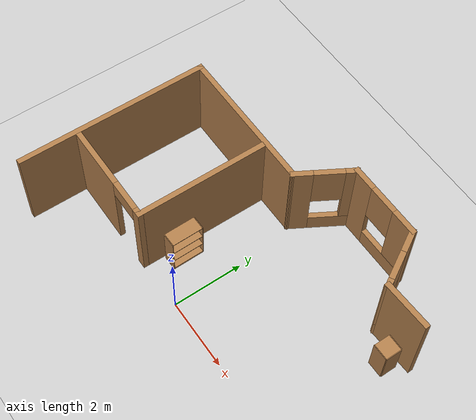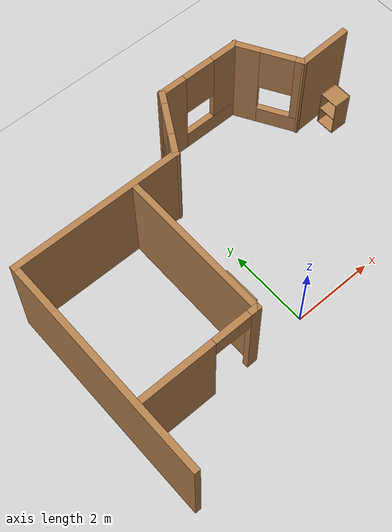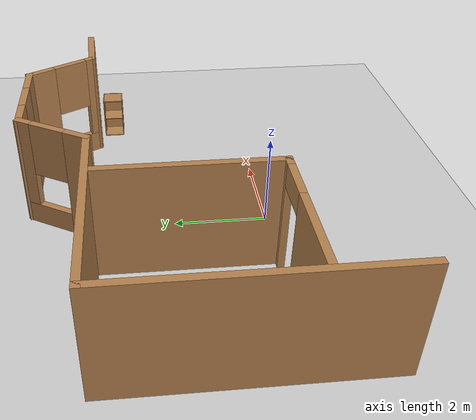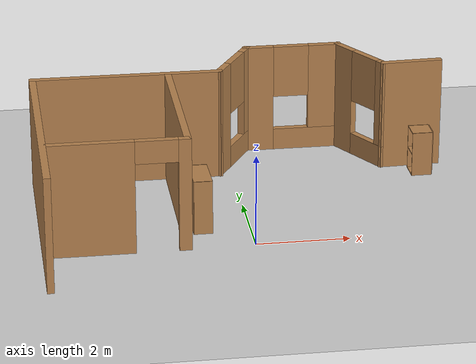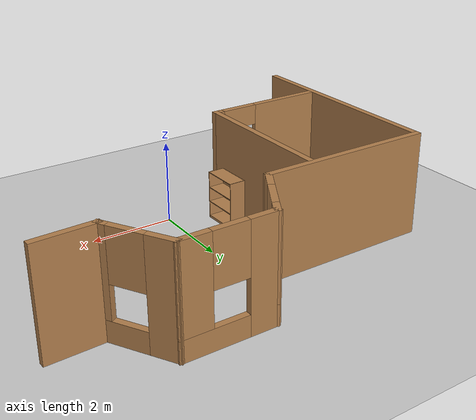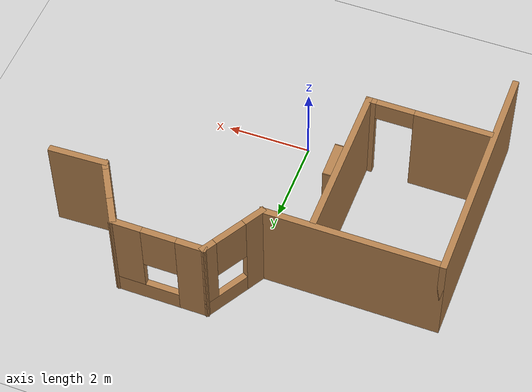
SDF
<sdf version="1.6">
 <world name="default">
  <model name="ground_plane">
   <static>1</static>
   <link name="link">
    <collision name="collision">
     <geometry><plane><normal>0 0 1</normal><size>100 100</size></plane></geometry>
     <surface><friction><ode><mu>100</mu><mu2>50</mu2></ode></friction></surface>
    </collision>
    <visual name="visual">
     <cast_shadows>0</cast_shadows>
     <geometry><plane><normal>0 0 1</normal><size>100 100</size></plane></geometry>
     <material>
      <script><uri>file://media/materials/scripts/gazebo.material</uri><name>Gazebo/Grey</name></script>
     </material>
    </visual>
   </link>
  </model>
  <model name="bookshelf">
   <static>1</static>
   <link name="link">
    <inertial><mass>1</mass></inertial>
    <collision name="back">
     <pose>0 0.005 0.6 0 -0 0</pose>
     <geometry><box><size>0.9 0.01 1.2</size></box></geometry>
    </collision>
    <visual name="visual1">
     <pose>0 0.005 0.6 0 -0 0</pose>
     <geometry><box><size>0.9 0.01 1.2</size></box></geometry>
     <material>
      <script><uri>file://media/materials/scripts/gazebo.material</uri><name>Gazebo/Wood</name></script>
     </material>
    </visual>
    <collision name="left_side">
     <pose>0.45 -0.195 0.6 0 -0 0</pose>
     <geometry><box><size>0.02 0.4 1.2</size></box></geometry>
    </collision>
    <visual name="visual2">
     <pose>0.45 -0.195 0.6 0 -0 0</pose>
     <geometry><box><size>0.02 0.4 1.2</size></box></geometry>
     <material>
      <script><uri>file://media/materials/scripts/gazebo.material</uri><name>Gazebo/Wood</name></script>
     </material>
    </visual>
    <collision name="right_side">
     <pose>-0.45 -0.195 0.6 0 -0 0</pose>
     <geometry><box><size>0.02 0.4 1.2</size></box></geometry>
    </collision>
    <visual name="visual3">
     <pose>-0.45 -0.195 0.6 0 -0 0</pose>
     <geometry><box><size>0.02 0.4 1.2</size></box></geometry>
     <material>
      <script><uri>file://media/materials/scripts/gazebo.material</uri><name>Gazebo/Wood</name></script>
     </material>
    </visual>
    <collision name="bottom">
     <pose>0 -0.195 0.03 0 -0 0</pose>
     <geometry><box><size>0.88 0.4 0.06</size></box></geometry>
    </collision>
    <visual name="visual4">
     <pose>0 -0.195 0.03 0 -0 0</pose>
     <geometry><box><size>0.88 0.4 0.06</size></box></geometry>
     <material>
      <script><uri>file://media/materials/scripts/gazebo.material</uri><name>Gazebo/Wood</name></script>
     </material>
    </visual>
    <collision name="top">
     <pose>0 -0.195 1.19 0 -0 0</pose>
     <geometry><box><size>0.88 0.4 0.02</size></box></geometry>
    </collision>
    <visual name="visual5">
     <pose>0 -0.195 1.19 0 -0 0</pose>
     <geometry><box><size>0.88 0.4 0.02</size></box></geometry>
     <material>
      <script><uri>file://media/materials/scripts/gazebo.material</uri><name>Gazebo/Wood</name></script>
     </material>
    </visual>
    <collision name="low_shelf">
     <pose>0 -0.195 0.43 0 -0 0</pose>
     <geometry><box><size>0.88 0.4 0.02</size></box></geometry>
    </collision>
    <visual name="visual6">
     <pose>0 -0.195 0.43 0 -0 0</pose>
     <geometry><box><size>0.88 0.4 0.02</size></box></geometry>
     <material>
      <script><uri>file://media/materials/scripts/gazebo.material</uri><name>Gazebo/Wood</name></script>
     </material>
    </visual>
    <collision name="high_shelf">
     <pose>0 -0.195 0.8 0 -0 0</pose>
     <geometry><box><size>0.88 0.4 0.02</size></box></geometry>
    </collision>
    <visual name="visual7">
     <pose>0 -0.195 0.8 0 -0 0</pose>
     <geometry><box><size>0.88 0.4 0.02</size></box></geometry>
     <material>
      <script><uri>file://media/materials/scripts/gazebo.material</uri><name>Gazebo/Wood</name></script>
     </material>
    </visual>
   </link>
   <pose>-1.24281 0.975028 0.065504 0 -0 1.58566</pose>
  </model>
  <model name="cabinet_0">
   <static>1</static>
   <link name="cabinet_bottom_plate">
    <inertial>
     <pose>0 0 -1 0 -0 0</pose>
     <inertia><ixx>2.05</ixx><ixy>0</ixy><ixz>0</ixz><iyy>2.05</iyy><iyz>0</iyz><izz>2.05</izz></inertia>
     <mass>25</mass>
    </inertial>
    <collision name="cabinet_bottom_plate_geom">
     <pose>0 0 0.01 0 -0 0</pose>
     <geometry><box><size>0.45 0.45 0.02</size></box></geometry>
    </collision>
    <visual name="cabinet_bottom_plate_geom_visual">
     <pose>0 0 0.01 0 -0 0</pose>
     <geometry><box><size>0.45 0.45 0.02</size></box></geometry>
     <material>
      <script><uri>file://media/materials/scripts/gazebo.material</uri><name>Gazebo/Wood</name></script>
     </material>
    </visual>
    <collision name="cabinet_bottom_plate_geom_cabinet_back_plate">
     <pose>0.235 0 0.51 0 -0 0</pose>
     <geometry><box><size>0.02 0.45 1.02</size></box></geometry>
    </collision>
    <visual name="cabinet_bottom_plate_geom_cabinet_back_plate_visual">
     <pose>0.235 0 0.51 0 -0 0</pose>
     <geometry><box><size>0.02 0.45 1.02</size></box></geometry>
     <material>
      <script><uri>file://media/materials/scripts/gazebo.material</uri><name>Gazebo/Wood</name></script>
     </material>
    </visual>
    <collision name="cabinet_bottom_plate_geom_cabinet_left_plate">
     <pose>0 0.235 0.51 0 -0 0</pose>
     <geometry><box><size>0.45 0.02 1.02</size></box></geometry>
    </collision>
    <visual name="cabinet_bottom_plate_geom_cabinet_left_plate_visual">
     <pose>0 0.235 0.51 0 -0 0</pose>
     <geometry><box><size>0.45 0.02 1.02</size></box></geometry>
     <material>
      <script><uri>file://media/materials/scripts/gazebo.material</uri><name>Gazebo/Wood</name></script>
     </material>
    </visual>
    <collision name="cabinet_bottom_plate_geom_cabinet_middle_plate">
     <pose>0 0 0.51 0 -0 0</pose>
     <geometry><box><size>0.45 0.45 0.02</size></box></geometry>
    </collision>
    <visual name="cabinet_bottom_plate_geom_cabinet_middle_plate_visual">
     <pose>0 0 0.51 0 -0 0</pose>
     <geometry><box><size>0.45 0.45 0.02</size></box></geometry>
     <material>
      <script><uri>file://media/materials/scripts/gazebo.material</uri><name>Gazebo/Wood</name></script>
     </material>
    </visual>
    <collision name="cabinet_bottom_plate_geom_cabinet_right_plate">
     <pose>0 -0.235 0.51 0 -0 0</pose>
     <geometry><box><size>0.45 0.02 1.02</size></box></geometry>
    </collision>
    <visual name="cabinet_bottom_plate_geom_cabinet_right_plate_visual">
     <pose>0 -0.235 0.51 0 -0 0</pose>
     <geometry><box><size>0.45 0.02 1.02</size></box></geometry>
     <material>
      <script><uri>file://media/materials/scripts/gazebo.material</uri><name>Gazebo/Wood</name></script>
     </material>
    </visual>
    <collision name="cabinet_bottom_plate_geom_cabinet_top_plate">
     <pose>0 0 1.01 0 -0 0</pose>
     <geometry><box><size>0.45 0.45 0.02</size></box></geometry>
    </collision>
    <visual name="cabinet_bottom_plate_geom_cabinet_top_plate_visual">
     <pose>0 0 1.01 0 -0 0</pose>
     <geometry><box><size>0.45 0.45 0.02</size></box></geometry>
     <material>
      <script><uri>file://media/materials/scripts/gazebo.material</uri><name>Gazebo/Wood</name></script>
     </material>
    </visual>
   </link>
   <pose>4.2117 3.31957 0 0 -0 0</pose>
  </model>
  <model name="badrs">
   <link name="Wall_30">
    <pose>-4.52647 1.01845 0 0 -0 1.5708</pose>
    <inertial>
     <mass>1</mass>
     <inertia><ixx>1</ixx><ixy>0</ixy><ixz>0</ixz><iyy>1</iyy><iyz>0</iyz><izz>1</izz></inertia>
    </inertial>
    <visual name="Wall_30_Visual">
     <pose>0 0 1.25 0 -0 0</pose>
     <geometry><box><size>5.5 0.15 2.5</size></box></geometry>
     <material>
      <script><uri>file://media/materials/scripts/gazebo.material</uri><name>Gazebo/Wood</name></script>
      <ambient>1 1 1 1</ambient>
      <shader type="pixel"><normal_map>__default__</normal_map></shader>
      <diffuse>1 1 1 1</diffuse>
      <specular>0 0 0 1</specular>
      <emissive>0 0 0 1</emissive>
     </material>
     <meta><layer>0</layer></meta>
    </visual>
    <collision name="Wall_30_Collision">
     <pose>0 0 1.25 0 -0 0</pose>
     <geometry><box><size>5.5 0.15 2.5</size></box></geometry>
     <surface>
      <friction>
       <ode><mu>1</mu><mu2>1</mu2><fdir1>0 0 0</fdir1><slip1>0</slip1><slip2>0</slip2></ode>
       <torsional>
        <coefficient>1</coefficient>
        <patch_radius>0</patch_radius>
        <surface_radius>0</surface_radius>
        <use_patch_radius>1</use_patch_radius>
        <ode><slip>0</slip></ode>
       </torsional>
      </friction>
      <bounce><restitution_coefficient>0</restitution_coefficient><threshold>1e+06</threshold></bounce>
      <contact>
       <collide_without_contact>0</collide_without_contact>
       <collide_without_contact_bitmask>1</collide_without_contact_bitmask>
       <collide_bitmask>1</collide_bitmask>
       <ode>
        <soft_cfm>0</soft_cfm>
        <soft_erp>0.2</soft_erp>
        <kp>1e+13</kp>
        <kd>1</kd>
        <max_vel>0.01</max_vel>
        <min_depth>0</min_depth>
       </ode>
       <bullet>
        <split_impulse>1</split_impulse>
        <split_impulse_penetration_threshold>-0.01</split_impulse_penetration_threshold>
        <soft_cfm>0</soft_cfm>
        <soft_erp>0.2</soft_erp>
        <kp>1e+13</kp>
        <kd>1</kd>
       </bullet>
      </contact>
     </surface>
    </collision>
   </link>
   <link name="Wall_31">
    <pose>-2.47647 3.69345 0 0 -0 0</pose>
    <inertial>
     <mass>1</mass>
     <inertia><ixx>1</ixx><ixy>0</ixy><ixz>0</ixz><iyy>1</iyy><iyz>0</iyz><izz>1</izz></inertia>
    </inertial>
    <visual name="Wall_31_Visual">
     <pose>0 0 1.25 0 -0 0</pose>
     <geometry><box><size>4.25 0.15 2.5</size></box></geometry>
     <material>
      <script><uri>file://media/materials/scripts/gazebo.material</uri><name>Gazebo/Wood</name></script>
      <ambient>1 1 1 1</ambient>
      <shader type="pixel"><normal_map>__default__</normal_map></shader>
      <diffuse>1 1 1 1</diffuse>
      <specular>0 0 0 1</specular>
      <emissive>0 0 0 1</emissive>
     </material>
     <meta><layer>0</layer></meta>
    </visual>
    <collision name="Wall_31_Collision">
     <pose>0 0 1.25 0 -0 0</pose>
     <geometry><box><size>4.25 0.15 2.5</size></box></geometry>
     <surface>
      <friction>
       <ode><mu>1</mu><mu2>1</mu2><fdir1>0 0 0</fdir1><slip1>0</slip1><slip2>0</slip2></ode>
       <torsional>
        <coefficient>1</coefficient>
        <patch_radius>0</patch_radius>
        <surface_radius>0</surface_radius>
        <use_patch_radius>1</use_patch_radius>
        <ode><slip>0</slip></ode>
       </torsional>
      </friction>
      <bounce><restitution_coefficient>0</restitution_coefficient><threshold>1e+06</threshold></bounce>
      <contact>
       <collide_without_contact>0</collide_without_contact>
       <collide_without_contact_bitmask>1</collide_without_contact_bitmask>
       <collide_bitmask>1</collide_bitmask>
       <ode>
        <soft_cfm>0</soft_cfm>
        <soft_erp>0.2</soft_erp>
        <kp>1e+13</kp>
        <kd>1</kd>
        <max_vel>0.01</max_vel>
        <min_depth>0</min_depth>
       </ode>
       <bullet>
        <split_impulse>1</split_impulse>
        <split_impulse_penetration_threshold>-0.01</split_impulse_penetration_threshold>
        <soft_cfm>0</soft_cfm>
        <soft_erp>0.2</soft_erp>
        <kp>1e+13</kp>
        <kd>1</kd>
       </bullet>
      </contact>
     </surface>
    </collision>
   </link>
   <link name="Wall_32">
    <pose>-0.026469 4.38627 0 0 -0 1.0472</pose>
    <inertial>
     <mass>1</mass>
     <inertia><ixx>1</ixx><ixy>0</ixy><ixz>0</ixz><iyy>1</iyy><iyz>0</iyz><izz>1</izz></inertia>
    </inertial>
    <visual name="Wall_32_Visual_0">
     <pose>-0.584637 0 1.25 0 -0 0</pose>
     <geometry><box><size>0.580725 0.15 2.5</size></box></geometry>
     <material>
      <script><uri>file://media/materials/scripts/gazebo.material</uri><name>Gazebo/Wood</name></script>
      <ambient>1 1 1 1</ambient>
      <shader type="pixel"><normal_map>__default__</normal_map></shader>
      <diffuse>1 1 1 1</diffuse>
      <specular>0 0 0 1</specular>
      <emissive>0 0 0 1</emissive>
     </material>
     <meta><layer>0</layer></meta>
    </visual>
    <visual name="Wall_32_Visual_1">
     <pose>0.290363 0 0.25 0 -0 0</pose>
     <geometry><box><size>1.16928 0.15 0.5</size></box></geometry>
     <material>
      <script><uri>file://media/materials/scripts/gazebo.material</uri><name>Gazebo/Wood</name></script>
      <ambient>1 1 1 1</ambient>
      <shader type="pixel"><normal_map>__default__</normal_map></shader>
      <diffuse>1 1 1 1</diffuse>
      <specular>0 0 0 1</specular>
      <emissive>0 0 0 1</emissive>
     </material>
     <meta><layer>0</layer></meta>
    </visual>
    <visual name="Wall_32_Visual_2">
     <pose>0.690363 0 1.5 0 -0 0</pose>
     <geometry><box><size>0.369275 0.15 2</size></box></geometry>
     <material>
      <script><uri>file://media/materials/scripts/gazebo.material</uri><name>Gazebo/Wood</name></script>
      <ambient>1 1 1 1</ambient>
      <shader type="pixel"><normal_map>__default__</normal_map></shader>
      <diffuse>1 1 1 1</diffuse>
      <specular>0 0 0 1</specular>
      <emissive>0 0 0 1</emissive>
     </material>
     <meta><layer>0</layer></meta>
    </visual>
    <visual name="Wall_32_Visual_3">
     <pose>0.105725 0 1.9 0 -0 0</pose>
     <geometry><box><size>0.8 0.15 1.2</size></box></geometry>
     <material>
      <script><uri>file://media/materials/scripts/gazebo.material</uri><name>Gazebo/Wood</name></script>
      <ambient>1 1 1 1</ambient>
      <shader type="pixel"><normal_map>__default__</normal_map></shader>
      <diffuse>1 1 1 1</diffuse>
      <specular>0 0 0 1</specular>
      <emissive>0 0 0 1</emissive>
     </material>
     <meta><layer>0</layer></meta>
    </visual>
    <collision name="Wall_32_Collision_0">
     <pose>-0.584637 0 1.25 0 -0 0</pose>
     <geometry><box><size>0.580725 0.15 2.5</size></box></geometry>
     <surface>
      <friction>
       <ode><mu>1</mu><mu2>1</mu2><fdir1>0 0 0</fdir1><slip1>0</slip1><slip2>0</slip2></ode>
       <torsional>
        <coefficient>1</coefficient>
        <patch_radius>0</patch_radius>
        <surface_radius>0</surface_radius>
        <use_patch_radius>1</use_patch_radius>
        <ode><slip>0</slip></ode>
       </torsional>
      </friction>
      <bounce><restitution_coefficient>0</restitution_coefficient><threshold>1e+06</threshold></bounce>
      <contact>
       <collide_without_contact>0</collide_without_contact>
       <collide_without_contact_bitmask>1</collide_without_contact_bitmask>
       <collide_bitmask>1</collide_bitmask>
       <ode>
        <soft_cfm>0</soft_cfm>
        <soft_erp>0.2</soft_erp>
        <kp>1e+13</kp>
        <kd>1</kd>
        <max_vel>0.01</max_vel>
        <min_depth>0</min_depth>
       </ode>
       <bullet>
        <split_impulse>1</split_impulse>
        <split_impulse_penetration_threshold>-0.01</split_impulse_penetration_threshold>
        <soft_cfm>0</soft_cfm>
        <soft_erp>0.2</soft_erp>
        <kp>1e+13</kp>
        <kd>1</kd>
       </bullet>
      </contact>
     </surface>
    </collision>
    <collision name="Wall_32_Collision_1">
     <pose>0.290363 0 0.25 0 -0 0</pose>
     <geometry><box><size>1.16928 0.15 0.5</size></box></geometry>
     <surface>
      <friction>
       <ode><mu>1</mu><mu2>1</mu2><fdir1>0 0 0</fdir1><slip1>0</slip1><slip2>0</slip2></ode>
       <torsional>
        <coefficient>1</coefficient>
        <patch_radius>0</patch_radius>
        <surface_radius>0</surface_radius>
        <use_patch_radius>1</use_patch_radius>
        <ode><slip>0</slip></ode>
       </torsional>
      </friction>
      <bounce><restitution_coefficient>0</restitution_coefficient><threshold>1e+06</threshold></bounce>
      <contact>
       <collide_without_contact>0</collide_without_contact>
       <collide_without_contact_bitmask>1</collide_without_contact_bitmask>
       <collide_bitmask>1</collide_bitmask>
       <ode>
        <soft_cfm>0</soft_cfm>
        <soft_erp>0.2</soft_erp>
        <kp>1e+13</kp>
        <kd>1</kd>
        <max_vel>0.01</max_vel>
        <min_depth>0</min_depth>
       </ode>
       <bullet>
        <split_impulse>1</split_impulse>
        <split_impulse_penetration_threshold>-0.01</split_impulse_penetration_threshold>
        <soft_cfm>0</soft_cfm>
        <soft_erp>0.2</soft_erp>
        <kp>1e+13</kp>
        <kd>1</kd>
       </bullet>
      </contact>
     </surface>
    </collision>
    <collision name="Wall_32_Collision_2">
     <pose>0.690363 0 1.5 0 -0 0</pose>
     <geometry><box><size>0.369275 0.15 2</size></box></geometry>
     <surface>
      <friction>
       <ode><mu>1</mu><mu2>1</mu2><fdir1>0 0 0</fdir1><slip1>0</slip1><slip2>0</slip2></ode>
       <torsional>
        <coefficient>1</coefficient>
        <patch_radius>0</patch_radius>
        <surface_radius>0</surface_radius>
        <use_patch_radius>1</use_patch_radius>
        <ode><slip>0</slip></ode>
       </torsional>
      </friction>
      <bounce><restitution_coefficient>0</restitution_coefficient><threshold>1e+06</threshold></bounce>
      <contact>
       <collide_without_contact>0</collide_without_contact>
       <collide_without_contact_bitmask>1</collide_without_contact_bitmask>
       <collide_bitmask>1</collide_bitmask>
       <ode>
        <soft_cfm>0</soft_cfm>
        <soft_erp>0.2</soft_erp>
        <kp>1e+13</kp>
        <kd>1</kd>
        <max_vel>0.01</max_vel>
        <min_depth>0</min_depth>
       </ode>
       <bullet>
        <split_impulse>1</split_impulse>
        <split_impulse_penetration_threshold>-0.01</split_impulse_penetration_threshold>
        <soft_cfm>0</soft_cfm>
        <soft_erp>0.2</soft_erp>
        <kp>1e+13</kp>
        <kd>1</kd>
       </bullet>
      </contact>
     </surface>
    </collision>
    <collision name="Wall_32_Collision_3">
     <pose>0.105725 0 1.9 0 -0 0</pose>
     <geometry><box><size>0.8 0.15 1.2</size></box></geometry>
     <surface>
      <friction>
       <ode><mu>1</mu><mu2>1</mu2><fdir1>0 0 0</fdir1><slip1>0</slip1><slip2>0</slip2></ode>
       <torsional>
        <coefficient>1</coefficient>
        <patch_radius>0</patch_radius>
        <surface_radius>0</surface_radius>
        <use_patch_radius>1</use_patch_radius>
        <ode><slip>0</slip></ode>
       </torsional>
      </friction>
      <bounce><restitution_coefficient>0</restitution_coefficient><threshold>1e+06</threshold></bounce>
      <contact>
       <collide_without_contact>0</collide_without_contact>
       <collide_without_contact_bitmask>1</collide_without_contact_bitmask>
       <collide_bitmask>1</collide_bitmask>
       <ode>
        <soft_cfm>0</soft_cfm>
        <soft_erp>0.2</soft_erp>
        <kp>1e+13</kp>
        <kd>1</kd>
        <max_vel>0.01</max_vel>
        <min_depth>0</min_depth>
       </ode>
       <bullet>
        <split_impulse>1</split_impulse>
        <split_impulse_penetration_threshold>-0.01</split_impulse_penetration_threshold>
        <soft_cfm>0</soft_cfm>
        <soft_erp>0.2</soft_erp>
        <kp>1e+13</kp>
        <kd>1</kd>
       </bullet>
      </contact>
     </surface>
    </collision>
   </link>
   <link name="Wall_33">
    <pose>1.42353 5.07909 0 0 -0 0</pose>
    <inertial>
     <mass>1</mass>
     <inertia><ixx>1</ixx><ixy>0</ixy><ixz>0</ixz><iyy>1</iyy><iyz>0</iyz><izz>1</izz></inertia>
    </inertial>
    <visual name="Wall_33_Visual_0">
     <pose>-0.772602 0 1.25 0 -0 0</pose>
     <geometry><box><size>0.704797 0.15 2.5</size></box></geometry>
     <material>
      <script><uri>file://media/materials/scripts/gazebo.material</uri><name>Gazebo/Wood</name></script>
      <ambient>1 1 1 1</ambient>
      <shader type="pixel"><normal_map>__default__</normal_map></shader>
      <diffuse>1 1 1 1</diffuse>
      <specular>0 0 0 1</specular>
      <emissive>0 0 0 1</emissive>
     </material>
     <meta><layer>0</layer></meta>
    </visual>
    <visual name="Wall_33_Visual_1">
     <pose>0.352398 0 0.25 0 -0 0</pose>
     <geometry><box><size>1.5452 0.15 0.5</size></box></geometry>
     <material>
      <script><uri>file://media/materials/scripts/gazebo.material</uri><name>Gazebo/Wood</name></script>
      <ambient>1 1 1 1</ambient>
      <shader type="pixel"><normal_map>__default__</normal_map></shader>
      <diffuse>1 1 1 1</diffuse>
      <specular>0 0 0 1</specular>
      <emissive>0 0 0 1</emissive>
     </material>
     <meta><layer>0</layer></meta>
    </visual>
    <visual name="Wall_33_Visual_2">
     <pose>0.752398 0 1.5 0 -0 0</pose>
     <geometry><box><size>0.745203 0.15 2</size></box></geometry>
     <material>
      <script><uri>file://media/materials/scripts/gazebo.material</uri><name>Gazebo/Wood</name></script>
      <ambient>1 1 1 1</ambient>
      <shader type="pixel"><normal_map>__default__</normal_map></shader>
      <diffuse>1 1 1 1</diffuse>
      <specular>0 0 0 1</specular>
      <emissive>0 0 0 1</emissive>
     </material>
     <meta><layer>0</layer></meta>
    </visual>
    <visual name="Wall_33_Visual_3">
     <pose>-0.020203 0 1.9 0 -0 0</pose>
     <geometry><box><size>0.8 0.15 1.2</size></box></geometry>
     <material>
      <script><uri>file://media/materials/scripts/gazebo.material</uri><name>Gazebo/Wood</name></script>
      <ambient>1 1 1 1</ambient>
      <shader type="pixel"><normal_map>__default__</normal_map></shader>
      <diffuse>1 1 1 1</diffuse>
      <specular>0 0 0 1</specular>
      <emissive>0 0 0 1</emissive>
     </material>
     <meta><layer>0</layer></meta>
    </visual>
    <collision name="Wall_33_Collision_0">
     <pose>-0.772602 0 1.25 0 -0 0</pose>
     <geometry><box><size>0.704797 0.15 2.5</size></box></geometry>
     <surface>
      <friction>
       <ode><mu>1</mu><mu2>1</mu2><fdir1>0 0 0</fdir1><slip1>0</slip1><slip2>0</slip2></ode>
       <torsional>
        <coefficient>1</coefficient>
        <patch_radius>0</patch_radius>
        <surface_radius>0</surface_radius>
        <use_patch_radius>1</use_patch_radius>
        <ode><slip>0</slip></ode>
       </torsional>
      </friction>
      <bounce><restitution_coefficient>0</restitution_coefficient><threshold>1e+06</threshold></bounce>
      <contact>
       <collide_without_contact>0</collide_without_contact>
       <collide_without_contact_bitmask>1</collide_without_contact_bitmask>
       <collide_bitmask>1</collide_bitmask>
       <ode>
        <soft_cfm>0</soft_cfm>
        <soft_erp>0.2</soft_erp>
        <kp>1e+13</kp>
        <kd>1</kd>
        <max_vel>0.01</max_vel>
        <min_depth>0</min_depth>
       </ode>
       <bullet>
        <split_impulse>1</split_impulse>
        <split_impulse_penetration_threshold>-0.01</split_impulse_penetration_threshold>
        <soft_cfm>0</soft_cfm>
        <soft_erp>0.2</soft_erp>
        <kp>1e+13</kp>
        <kd>1</kd>
       </bullet>
      </contact>
     </surface>
    </collision>
    <collision name="Wall_33_Collision_3">
     <pose>-0.020203 0 1.9 0 -0 0</pose>
     <geometry><box><size>0.8 0.15 1.2</size></box></geometry>
     <surface>
      <friction>
       <ode><mu>1</mu><mu2>1</mu2><fdir1>0 0 0</fdir1><slip1>0</slip1><slip2>0</slip2></ode>
       <torsional>
        <coefficient>1</coefficient>
        <patch_radius>0</patch_radius>
        <surface_radius>0</surface_radius>
        <use_patch_radius>1</use_patch_radius>
        <ode><slip>0</slip></ode>
       </torsional>
      </friction>
      <bounce><restitution_coefficient>0</restitution_coefficient><threshold>1e+06</threshold></bounce>
      <contact>
       <collide_without_contact>0</collide_without_contact>
       <collide_without_contact_bitmask>1</collide_without_contact_bitmask>
       <collide_bitmask>1</collide_bitmask>
       <ode>
        <soft_cfm>0</soft_cfm>
        <soft_erp>0.2</soft_erp>
        <kp>1e+13</kp>
        <kd>1</kd>
        <max_vel>0.01</max_vel>
        <min_depth>0</min_depth>
       </ode>
       <bullet>
        <split_impulse>1</split_impulse>
        <split_impulse_penetration_threshold>-0.01</split_impulse_penetration_threshold>
        <soft_cfm>0</soft_cfm>
        <soft_erp>0.2</soft_erp>
        <kp>1e+13</kp>
        <kd>1</kd>
       </bullet>
      </contact>
     </surface>
    </collision>
    <collision name="Wall_33_Collision_1">
     <pose>0.352398 0 0.25 0 -0 0</pose>
     <geometry><box><size>1.5452 0.15 0.5</size></box></geometry>
     <surface>
      <friction>
       <ode><mu>1</mu><mu2>1</mu2><fdir1>0 0 0</fdir1><slip1>0</slip1><slip2>0</slip2></ode>
       <torsional>
        <coefficient>1</coefficient>
        <patch_radius>0</patch_radius>
        <surface_radius>0</surface_radius>
        <use_patch_radius>1</use_patch_radius>
        <ode><slip>0</slip></ode>
       </torsional>
      </friction>
      <bounce><restitution_coefficient>0</restitution_coefficient><threshold>1e+06</threshold></bounce>
      <contact>
       <collide_without_contact>0</collide_without_contact>
       <collide_without_contact_bitmask>1</collide_without_contact_bitmask>
       <collide_bitmask>1</collide_bitmask>
       <ode>
        <soft_cfm>0</soft_cfm>
        <soft_erp>0.2</soft_erp>
        <kp>1e+13</kp>
        <kd>1</kd>
        <max_vel>0.01</max_vel>
        <min_depth>0</min_depth>
       </ode>
       <bullet>
        <split_impulse>1</split_impulse>
        <split_impulse_penetration_threshold>-0.01</split_impulse_penetration_threshold>
        <soft_cfm>0</soft_cfm>
        <soft_erp>0.2</soft_erp>
        <kp>1e+13</kp>
        <kd>1</kd>
       </bullet>
      </contact>
     </surface>
    </collision>
    <collision name="Wall_33_Collision_2">
     <pose>0.752398 0 1.5 0 -0 0</pose>
     <geometry><box><size>0.745203 0.15 2</size></box></geometry>
     <surface>
      <friction>
       <ode><mu>1</mu><mu2>1</mu2><fdir1>0 0 0</fdir1><slip1>0</slip1><slip2>0</slip2></ode>
       <torsional>
        <coefficient>1</coefficient>
        <patch_radius>0</patch_radius>
        <surface_radius>0</surface_radius>
        <use_patch_radius>1</use_patch_radius>
        <ode><slip>0</slip></ode>
       </torsional>
      </friction>
      <bounce><restitution_coefficient>0</restitution_coefficient><threshold>1e+06</threshold></bounce>
      <contact>
       <collide_without_contact>0</collide_without_contact>
       <collide_without_contact_bitmask>1</collide_without_contact_bitmask>
       <collide_bitmask>1</collide_bitmask>
       <ode>
        <soft_cfm>0</soft_cfm>
        <soft_erp>0.2</soft_erp>
        <kp>1e+13</kp>
        <kd>1</kd>
        <max_vel>0.01</max_vel>
        <min_depth>0</min_depth>
       </ode>
       <bullet>
        <split_impulse>1</split_impulse>
        <split_impulse_penetration_threshold>-0.01</split_impulse_penetration_threshold>
        <soft_cfm>0</soft_cfm>
        <soft_erp>0.2</soft_erp>
        <kp>1e+13</kp>
        <kd>1</kd>
       </bullet>
      </contact>
     </surface>
    </collision>
   </link>
   <link name="Wall_34">
    <pose>2.87353 4.38627 0 0 0 -1.0472</pose>
    <inertial>
     <mass>1</mass>
     <inertia><ixx>1</ixx><ixy>0</ixy><ixz>0</ixz><iyy>1</iyy><iyz>0</iyz><izz>1</izz></inertia>
    </inertial>
    <visual name="Wall_34_Visual_0">
     <pose>-0.531816 0 1.25 0 -0 0</pose>
     <geometry><box><size>0.686368 0.15 2.5</size></box></geometry>
     <material>
      <script><uri>file://media/materials/scripts/gazebo.material</uri><name>Gazebo/Wood</name></script>
      <ambient>1 1 1 1</ambient>
      <shader type="pixel"><normal_map>__default__</normal_map></shader>
      <diffuse>1 1 1 1</diffuse>
      <specular>0 0 0 1</specular>
      <emissive>0 0 0 1</emissive>
     </material>
     <meta><layer>0</layer></meta>
    </visual>
    <visual name="Wall_34_Visual_1">
     <pose>0.343184 0 0.25 0 -0 0</pose>
     <geometry><box><size>1.06363 0.15 0.5</size></box></geometry>
     <material>
      <script><uri>file://media/materials/scripts/gazebo.material</uri><name>Gazebo/Wood</name></script>
      <ambient>1 1 1 1</ambient>
      <shader type="pixel"><normal_map>__default__</normal_map></shader>
      <diffuse>1 1 1 1</diffuse>
      <specular>0 0 0 1</specular>
      <emissive>0 0 0 1</emissive>
     </material>
     <meta><layer>0</layer></meta>
    </visual>
    <visual name="Wall_34_Visual_2">
     <pose>0.743184 0 1.5 0 -0 0</pose>
     <geometry><box><size>0.263632 0.15 2</size></box></geometry>
     <material>
      <script><uri>file://media/materials/scripts/gazebo.material</uri><name>Gazebo/Wood</name></script>
      <ambient>1 1 1 1</ambient>
      <shader type="pixel"><normal_map>__default__</normal_map></shader>
      <diffuse>1 1 1 1</diffuse>
      <specular>0 0 0 1</specular>
      <emissive>0 0 0 1</emissive>
     </material>
     <meta><layer>0</layer></meta>
    </visual>
    <visual name="Wall_34_Visual_3">
     <pose>0.211368 0 1.9 0 -0 0</pose>
     <geometry><box><size>0.8 0.15 1.2</size></box></geometry>
     <material>
      <script><uri>file://media/materials/scripts/gazebo.material</uri><name>Gazebo/Wood</name></script>
      <ambient>1 1 1 1</ambient>
      <shader type="pixel"><normal_map>__default__</normal_map></shader>
      <diffuse>1 1 1 1</diffuse>
      <specular>0 0 0 1</specular>
      <emissive>0 0 0 1</emissive>
     </material>
     <meta><layer>0</layer></meta>
    </visual>
    <collision name="Wall_34_Collision_0">
     <pose>-0.531816 0 1.25 0 -0 0</pose>
     <geometry><box><size>0.686368 0.15 2.5</size></box></geometry>
     <surface>
      <friction>
       <ode><mu>1</mu><mu2>1</mu2><fdir1>0 0 0</fdir1><slip1>0</slip1><slip2>0</slip2></ode>
       <torsional>
        <coefficient>1</coefficient>
        <patch_radius>0</patch_radius>
        <surface_radius>0</surface_radius>
        <use_patch_radius>1</use_patch_radius>
        <ode><slip>0</slip></ode>
       </torsional>
      </friction>
      <bounce><restitution_coefficient>0</restitution_coefficient><threshold>1e+06</threshold></bounce>
      <contact>
       <collide_without_contact>0</collide_without_contact>
       <collide_without_contact_bitmask>1</collide_without_contact_bitmask>
       <collide_bitmask>1</collide_bitmask>
       <ode>
        <soft_cfm>0</soft_cfm>
        <soft_erp>0.2</soft_erp>
        <kp>1e+13</kp>
        <kd>1</kd>
        <max_vel>0.01</max_vel>
        <min_depth>0</min_depth>
       </ode>
       <bullet>
        <split_impulse>1</split_impulse>
        <split_impulse_penetration_threshold>-0.01</split_impulse_penetration_threshold>
        <soft_cfm>0</soft_cfm>
        <soft_erp>0.2</soft_erp>
        <kp>1e+13</kp>
        <kd>1</kd>
       </bullet>
      </contact>
     </surface>
    </collision>
    <collision name="Wall_34_Collision_1">
     <pose>0.343184 0 0.25 0 -0 0</pose>
     <geometry><box><size>1.06363 0.15 0.5</size></box></geometry>
     <surface>
      <friction>
       <ode><mu>1</mu><mu2>1</mu2><fdir1>0 0 0</fdir1><slip1>0</slip1><slip2>0</slip2></ode>
       <torsional>
        <coefficient>1</coefficient>
        <patch_radius>0</patch_radius>
        <surface_radius>0</surface_radius>
        <use_patch_radius>1</use_patch_radius>
        <ode><slip>0</slip></ode>
       </torsional>
      </friction>
      <bounce><restitution_coefficient>0</restitution_coefficient><threshold>1e+06</threshold></bounce>
      <contact>
       <collide_without_contact>0</collide_without_contact>
       <collide_without_contact_bitmask>1</collide_without_contact_bitmask>
       <collide_bitmask>1</collide_bitmask>
       <ode>
        <soft_cfm>0</soft_cfm>
        <soft_erp>0.2</soft_erp>
        <kp>1e+13</kp>
        <kd>1</kd>
        <max_vel>0.01</max_vel>
        <min_depth>0</min_depth>
       </ode>
       <bullet>
        <split_impulse>1</split_impulse>
        <split_impulse_penetration_threshold>-0.01</split_impulse_penetration_threshold>
        <soft_cfm>0</soft_cfm>
        <soft_erp>0.2</soft_erp>
        <kp>1e+13</kp>
        <kd>1</kd>
       </bullet>
      </contact>
     </surface>
    </collision>
    <collision name="Wall_34_Collision_3">
     <pose>0.211368 0 1.9 0 -0 0</pose>
     <geometry><box><size>0.8 0.15 1.2</size></box></geometry>
     <surface>
      <friction>
       <ode><mu>1</mu><mu2>1</mu2><fdir1>0 0 0</fdir1><slip1>0</slip1><slip2>0</slip2></ode>
       <torsional>
        <coefficient>1</coefficient>
        <patch_radius>0</patch_radius>
        <surface_radius>0</surface_radius>
        <use_patch_radius>1</use_patch_radius>
        <ode><slip>0</slip></ode>
       </torsional>
      </friction>
      <bounce><restitution_coefficient>0</restitution_coefficient><threshold>1e+06</threshold></bounce>
      <contact>
       <collide_without_contact>0</collide_without_contact>
       <collide_without_contact_bitmask>1</collide_without_contact_bitmask>
       <collide_bitmask>1</collide_bitmask>
       <ode>
        <soft_cfm>0</soft_cfm>
        <soft_erp>0.2</soft_erp>
        <kp>1e+13</kp>
        <kd>1</kd>
        <max_vel>0.01</max_vel>
        <min_depth>0</min_depth>
       </ode>
       <bullet>
        <split_impulse>1</split_impulse>
        <split_impulse_penetration_threshold>-0.01</split_impulse_penetration_threshold>
        <soft_cfm>0</soft_cfm>
        <soft_erp>0.2</soft_erp>
        <kp>1e+13</kp>
        <kd>1</kd>
       </bullet>
      </contact>
     </surface>
    </collision>
    <collision name="Wall_34_Collision_2">
     <pose>0.743184 0 1.5 0 -0 0</pose>
     <geometry><box><size>0.263632 0.15 2</size></box></geometry>
     <surface>
      <friction>
       <ode><mu>1</mu><mu2>1</mu2><fdir1>0 0 0</fdir1><slip1>0</slip1><slip2>0</slip2></ode>
       <torsional>
        <coefficient>1</coefficient>
        <patch_radius>0</patch_radius>
        <surface_radius>0</surface_radius>
        <use_patch_radius>1</use_patch_radius>
        <ode><slip>0</slip></ode>
       </torsional>
      </friction>
      <bounce><restitution_coefficient>0</restitution_coefficient><threshold>1e+06</threshold></bounce>
      <contact>
       <collide_without_contact>0</collide_without_contact>
       <collide_without_contact_bitmask>1</collide_without_contact_bitmask>
       <collide_bitmask>1</collide_bitmask>
       <ode>
        <soft_cfm>0</soft_cfm>
        <soft_erp>0.2</soft_erp>
        <kp>1e+13</kp>
        <kd>1</kd>
        <max_vel>0.01</max_vel>
        <min_depth>0</min_depth>
       </ode>
       <bullet>
        <split_impulse>1</split_impulse>
        <split_impulse_penetration_threshold>-0.01</split_impulse_penetration_threshold>
        <soft_cfm>0</soft_cfm>
        <soft_erp>0.2</soft_erp>
        <kp>1e+13</kp>
        <kd>1</kd>
       </bullet>
      </contact>
     </surface>
    </collision>
   </link>
   <link name="Wall_35">
    <pose>3.89853 3.71845 0 0 -0 0.039979</pose>
    <inertial>
     <mass>1</mass>
     <inertia><ixx>1</ixx><ixy>0</ixy><ixz>0</ixz><iyy>1</iyy><iyz>0</iyz><izz>1</izz></inertia>
    </inertial>
    <visual name="Wall_35_Visual">
     <pose>0 0 1.25 0 -0 0</pose>
     <geometry><box><size>1.401 0.15 2.5</size></box></geometry>
     <material>
      <script><uri>file://media/materials/scripts/gazebo.material</uri><name>Gazebo/Wood</name></script>
      <ambient>1 1 1 1</ambient>
      <shader type="pixel"><normal_map>__default__</normal_map></shader>
      <diffuse>1 1 1 1</diffuse>
      <specular>0 0 0 1</specular>
      <emissive>0 0 0 1</emissive>
     </material>
     <meta><layer>0</layer></meta>
    </visual>
    <collision name="Wall_35_Collision">
     <pose>0 0 1.25 0 -0 0</pose>
     <geometry><box><size>1.401 0.15 2.5</size></box></geometry>
     <surface>
      <friction>
       <ode><mu>1</mu><mu2>1</mu2><fdir1>0 0 0</fdir1><slip1>0</slip1><slip2>0</slip2></ode>
       <torsional>
        <coefficient>1</coefficient>
        <patch_radius>0</patch_radius>
        <surface_radius>0</surface_radius>
        <use_patch_radius>1</use_patch_radius>
        <ode><slip>0</slip></ode>
       </torsional>
      </friction>
      <bounce><restitution_coefficient>0</restitution_coefficient><threshold>1e+06</threshold></bounce>
      <contact>
       <collide_without_contact>0</collide_without_contact>
       <collide_without_contact_bitmask>1</collide_without_contact_bitmask>
       <collide_bitmask>1</collide_bitmask>
       <ode>
        <soft_cfm>0</soft_cfm>
        <soft_erp>0.2</soft_erp>
        <kp>1e+13</kp>
        <kd>1</kd>
        <max_vel>0.01</max_vel>
        <min_depth>0</min_depth>
       </ode>
       <bullet>
        <split_impulse>1</split_impulse>
        <split_impulse_penetration_threshold>-0.01</split_impulse_penetration_threshold>
        <soft_cfm>0</soft_cfm>
        <soft_erp>0.2</soft_erp>
        <kp>1e+13</kp>
        <kd>1</kd>
       </bullet>
      </contact>
     </surface>
    </collision>
   </link>
   <link name="Wall_37">
    <pose>-1.56392 1.75991 0 0 0 -1.5708</pose>
    <inertial>
     <mass>1</mass>
     <inertia><ixx>1</ixx><ixy>0</ixy><ixz>0</ixz><iyy>1</iyy><iyz>0</iyz><izz>1</izz></inertia>
    </inertial>
    <visual name="Wall_37_Visual">
     <pose>0 0 1.25 0 -0 0</pose>
     <geometry><box><size>3.75 0.15 2.5</size></box></geometry>
     <material>
      <script><uri>file://media/materials/scripts/gazebo.material</uri><name>Gazebo/Wood</name></script>
      <ambient>1 1 1 1</ambient>
      <shader type="pixel"><normal_map>__default__</normal_map></shader>
      <diffuse>1 1 1 1</diffuse>
      <specular>0.2 0.2 0.2 1</specular>
      <emissive>0 0 0 1</emissive>
     </material>
     <meta><layer>0</layer></meta>
    </visual>
    <collision name="Wall_37_Collision">
     <pose>0 0 1.25 0 -0 0</pose>
     <geometry><box><size>3.75 0.15 2.5</size></box></geometry>
     <surface>
      <friction>
       <ode><mu>1</mu><mu2>1</mu2><fdir1>0 0 0</fdir1><slip1>0</slip1><slip2>0</slip2></ode>
       <torsional>
        <coefficient>1</coefficient>
        <patch_radius>0</patch_radius>
        <surface_radius>0</surface_radius>
        <use_patch_radius>1</use_patch_radius>
        <ode><slip>0</slip></ode>
       </torsional>
      </friction>
      <bounce><restitution_coefficient>0</restitution_coefficient><threshold>1e+06</threshold></bounce>
      <contact>
       <collide_without_contact>0</collide_without_contact>
       <collide_without_contact_bitmask>1</collide_without_contact_bitmask>
       <collide_bitmask>1</collide_bitmask>
       <ode>
        <soft_cfm>0</soft_cfm>
        <soft_erp>0.2</soft_erp>
        <kp>1e+13</kp>
        <kd>1</kd>
        <max_vel>0.01</max_vel>
        <min_depth>0</min_depth>
       </ode>
       <bullet>
        <split_impulse>1</split_impulse>
        <split_impulse_penetration_threshold>-0.01</split_impulse_penetration_threshold>
        <soft_cfm>0</soft_cfm>
        <soft_erp>0.2</soft_erp>
        <kp>1e+13</kp>
        <kd>1</kd>
       </bullet>
      </contact>
     </surface>
    </collision>
   </link>
   <link name="Wall_38">
    <pose>-2.98892 -0.040087 0 0 -0 3.14159</pose>
    <inertial>
     <mass>1</mass>
     <inertia><ixx>1</ixx><ixy>0</ixy><ixz>0</ixz><iyy>1</iyy><iyz>0</iyz><izz>1</izz></inertia>
    </inertial>
    <visual name="Wall_38_Visual_0">
     <pose>-1.3663 0 1.25 0 -0 0</pose>
     <geometry><box><size>0.267395 0.15 2.5</size></box></geometry>
     <material>
      <script><uri>file://media/materials/scripts/gazebo.material</uri><name>Gazebo/Wood</name></script>
      <ambient>1 1 1 1</ambient>
      <shader type="pixel"><normal_map>__default__</normal_map></shader>
      <diffuse>1 1 1 1</diffuse>
      <specular>0.2 0.2 0.2 1</specular>
      <emissive>0 0 0 1</emissive>
     </material>
     <meta><layer>0</layer></meta>
    </visual>
    <visual name="Wall_38_Visual_1">
     <pose>0.583697 0 1.25 0 -0 0</pose>
     <geometry><box><size>1.83261 0.15 2.5</size></box></geometry>
     <material>
      <script><uri>file://media/materials/scripts/gazebo.material</uri><name>Gazebo/Wood</name></script>
      <ambient>1 1 1 1</ambient>
      <shader type="pixel"><normal_map>__default__</normal_map></shader>
      <diffuse>1 1 1 1</diffuse>
      <specular>0.2 0.2 0.2 1</specular>
      <emissive>0 0 0 1</emissive>
     </material>
     <meta><layer>0</layer></meta>
    </visual>
    <visual name="Wall_38_Visual_2">
     <pose>-0.782605 0 2.25 0 -0 0</pose>
     <geometry><box><size>0.9 0.15 0.5</size></box></geometry>
     <material>
      <script><uri>file://media/materials/scripts/gazebo.material</uri><name>Gazebo/Wood</name></script>
      <ambient>1 1 1 1</ambient>
      <shader type="pixel"><normal_map>__default__</normal_map></shader>
      <diffuse>1 1 1 1</diffuse>
      <specular>0.2 0.2 0.2 1</specular>
      <emissive>0 0 0 1</emissive>
     </material>
     <meta><layer>0</layer></meta>
    </visual>
    <collision name="Wall_38_Collision_2">
     <pose>-0.782605 0 2.25 0 -0 0</pose>
     <geometry><box><size>0.9 0.15 0.5</size></box></geometry>
     <surface>
      <friction>
       <ode><mu>1</mu><mu2>1</mu2><fdir1>0 0 0</fdir1><slip1>0</slip1><slip2>0</slip2></ode>
       <torsional>
        <coefficient>1</coefficient>
        <patch_radius>0</patch_radius>
        <surface_radius>0</surface_radius>
        <use_patch_radius>1</use_patch_radius>
        <ode><slip>0</slip></ode>
       </torsional>
      </friction>
      <bounce><restitution_coefficient>0</restitution_coefficient><threshold>1e+06</threshold></bounce>
      <contact>
       <collide_without_contact>0</collide_without_contact>
       <collide_without_contact_bitmask>1</collide_without_contact_bitmask>
       <collide_bitmask>1</collide_bitmask>
       <ode>
        <soft_cfm>0</soft_cfm>
        <soft_erp>0.2</soft_erp>
        <kp>1e+13</kp>
        <kd>1</kd>
        <max_vel>0.01</max_vel>
        <min_depth>0</min_depth>
       </ode>
       <bullet>
        <split_impulse>1</split_impulse>
        <split_impulse_penetration_threshold>-0.01</split_impulse_penetration_threshold>
        <soft_cfm>0</soft_cfm>
        <soft_erp>0.2</soft_erp>
        <kp>1e+13</kp>
        <kd>1</kd>
       </bullet>
      </contact>
     </surface>
    </collision>
    <collision name="Wall_38_Collision_0">
     <pose>-1.3663 0 1.25 0 -0 0</pose>
     <geometry><box><size>0.267395 0.15 2.5</size></box></geometry>
     <surface>
      <friction>
       <ode><mu>1</mu><mu2>1</mu2><fdir1>0 0 0</fdir1><slip1>0</slip1><slip2>0</slip2></ode>
       <torsional>
        <coefficient>1</coefficient>
        <patch_radius>0</patch_radius>
        <surface_radius>0</surface_radius>
        <use_patch_radius>1</use_patch_radius>
        <ode><slip>0</slip></ode>
       </torsional>
      </friction>
      <bounce><restitution_coefficient>0</restitution_coefficient><threshold>1e+06</threshold></bounce>
      <contact>
       <collide_without_contact>0</collide_without_contact>
       <collide_without_contact_bitmask>1</collide_without_contact_bitmask>
       <collide_bitmask>1</collide_bitmask>
       <ode>
        <soft_cfm>0</soft_cfm>
        <soft_erp>0.2</soft_erp>
        <kp>1e+13</kp>
        <kd>1</kd>
        <max_vel>0.01</max_vel>
        <min_depth>0</min_depth>
       </ode>
       <bullet>
        <split_impulse>1</split_impulse>
        <split_impulse_penetration_threshold>-0.01</split_impulse_penetration_threshold>
        <soft_cfm>0</soft_cfm>
        <soft_erp>0.2</soft_erp>
        <kp>1e+13</kp>
        <kd>1</kd>
       </bullet>
      </contact>
     </surface>
    </collision>
    <collision name="Wall_38_Collision_1">
     <pose>0.583697 0 1.25 0 -0 0</pose>
     <geometry><box><size>1.83261 0.15 2.5</size></box></geometry>
     <surface>
      <friction>
       <ode><mu>1</mu><mu2>1</mu2><fdir1>0 0 0</fdir1><slip1>0</slip1><slip2>0</slip2></ode>
       <torsional>
        <coefficient>1</coefficient>
        <patch_radius>0</patch_radius>
        <surface_radius>0</surface_radius>
        <use_patch_radius>1</use_patch_radius>
        <ode><slip>0</slip></ode>
       </torsional>
      </friction>
      <bounce><restitution_coefficient>0</restitution_coefficient><threshold>1e+06</threshold></bounce>
      <contact>
       <collide_without_contact>0</collide_without_contact>
       <collide_without_contact_bitmask>1</collide_without_contact_bitmask>
       <collide_bitmask>1</collide_bitmask>
       <ode>
        <soft_cfm>0</soft_cfm>
        <soft_erp>0.2</soft_erp>
        <kp>1e+13</kp>
        <kd>1</kd>
        <max_vel>0.01</max_vel>
        <min_depth>0</min_depth>
       </ode>
       <bullet>
        <split_impulse>1</split_impulse>
        <split_impulse_penetration_threshold>-0.01</split_impulse_penetration_threshold>
        <soft_cfm>0</soft_cfm>
        <soft_erp>0.2</soft_erp>
        <kp>1e+13</kp>
        <kd>1</kd>
       </bullet>
      </contact>
     </surface>
    </collision>
   </link>
   <static>1</static>
   <pose>0.14345 0.028465 0 0 -0 0</pose>
  </model>
 </world>
</sdf>
